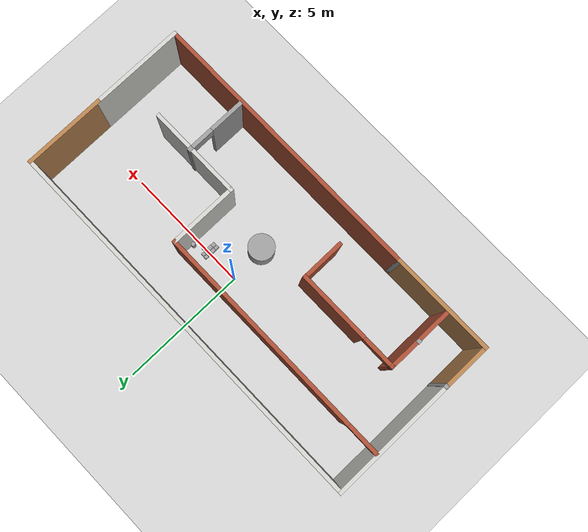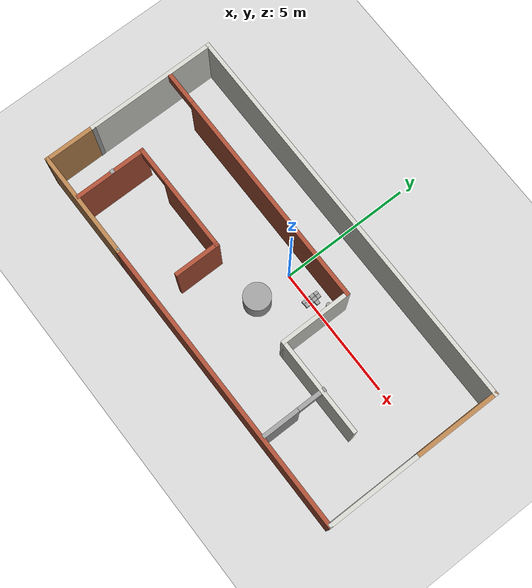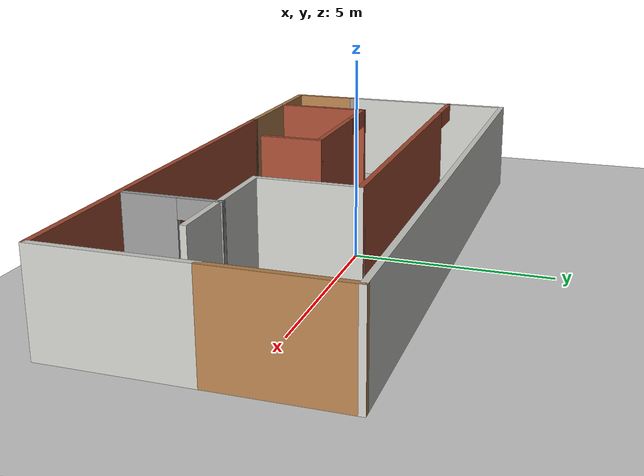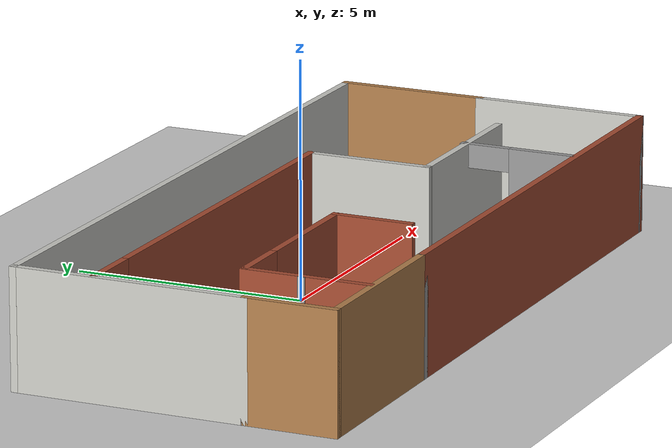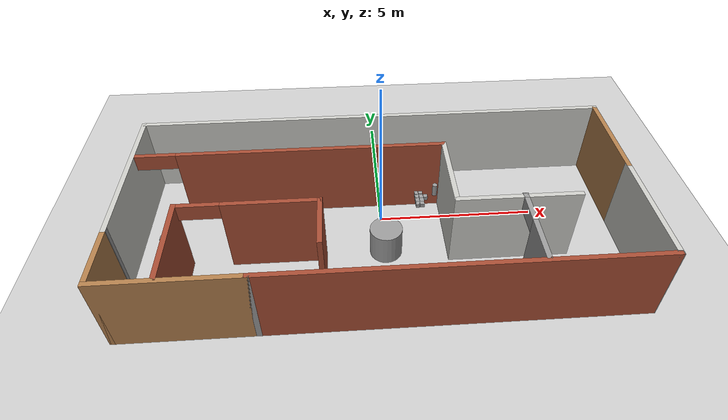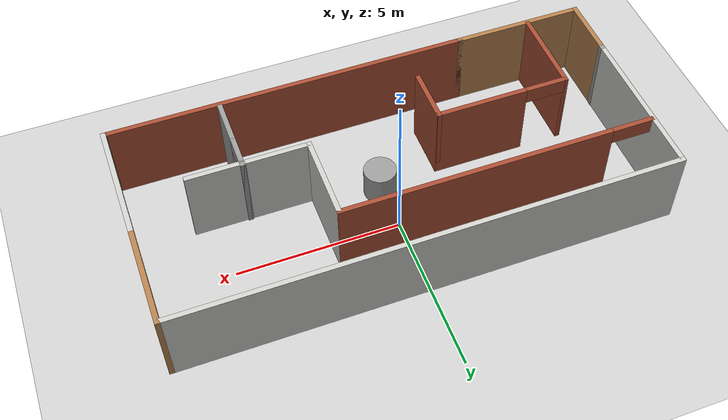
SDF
<sdf version="1.7">
 <world name="default">
  <light name="sun" type="directional">
   <pose>0 0 10 0 -0 0</pose>
   <diffuse>0.8 0.8 0.8 1</diffuse>
   <specular>0.2 0.2 0.2 1</specular>
   <attenuation>
    <range>1000</range>
    <constant>0.9</constant>
    <linear>0.01</linear>
    <quadratic>0.001</quadratic>
   </attenuation>
   <direction>-0.5 0.1 -0.9</direction>
   <spot><inner_angle>0</inner_angle><outer_angle>0</outer_angle><falloff>0</falloff></spot>
  </light>
  <model name="ground_plane">
   <static>1</static>
   <link name="link">
    <collision name="collision">
     <geometry><plane><normal>0 0 1</normal><size>100 100</size></plane></geometry>
     <surface><friction><ode><mu>100</mu><mu2>50</mu2></ode></friction></surface>
    </collision>
    <visual name="visual">
     <cast_shadows>0</cast_shadows>
     <geometry><plane><normal>0 0 1</normal><size>100 100</size></plane></geometry>
     <material>
      <script><uri>file://media/materials/scripts/gazebo.material</uri><name>Gazebo/Grey</name></script>
     </material>
    </visual>
   </link>
  </model>
  <gravity>0 0 -9.8</gravity>
  <magnetic_field>6e-06 2.3e-05 -4.2e-05</magnetic_field>
  <atmosphere type="adiabatic"/>
  <physics type="ode">
   <max_step_size>0.001</max_step_size>
   <real_time_factor>1</real_time_factor>
   <real_time_update_rate>1000</real_time_update_rate>
  </physics>
  <scene><ambient>0.4 0.4 0.4 1</ambient><background>0.7 0.7 0.7 1</background><shadows>1</shadows></scene>
  <audio><device>default</device></audio>
  <spherical_coordinates>
   <surface_model>EARTH_WGS84</surface_model>
   <latitude_deg>0</latitude_deg>
   <longitude_deg>0</longitude_deg>
   <elevation>0</elevation>
   <heading_deg>0</heading_deg>
  </spherical_coordinates>
  <model name="world1_new">
   <pose>-0.07 -0.93 0 0 -0 0</pose>
   <link name="Wall_0">
    <collision name="Wall_0_Collision">
     <geometry><box><size>0.16 0.15 2.5</size></box></geometry>
     <pose>0 0 1.25 0 -0 0</pose>
    </collision>
    <visual name="Wall_0_Visual">
     <pose>0 0 1.25 0 -0 0</pose>
     <geometry><box><size>0.16 0.15 2.5</size></box></geometry>
     <material>
      <script><uri>file://media/materials/scripts/gazebo.material</uri><name>Gazebo/Grey</name></script>
      <ambient>1 1 1 1</ambient>
     </material>
     <meta><layer>0</layer></meta>
    </visual>
    <pose>-3.575 -3.35 0 0 -0 0</pose>
   </link>
   <link name="Wall_1">
    <collision name="Wall_1_Collision">
     <geometry><box><size>11.25 0.15 2.5</size></box></geometry>
     <pose>0 0 1.25 0 -0 0</pose>
    </collision>
    <visual name="Wall_1_Visual">
     <pose>0 0 1.25 0 -0 0</pose>
     <geometry><box><size>11.25 0.15 2.5</size></box></geometry>
     <material>
      <script><uri>file://media/materials/scripts/gazebo.material</uri><name>Gazebo/Bricks</name></script>
      <ambient>1 1 1 1</ambient>
     </material>
     <meta><layer>0</layer></meta>
    </visual>
    <pose>1.98 -3.35 0 0 -0 0</pose>
   </link>
   <link name="Wall_11">
    <collision name="Wall_11_Collision">
     <geometry><box><size>2 0.15 2.5</size></box></geometry>
     <pose>0 0 1.25 0 -0 0</pose>
    </collision>
    <visual name="Wall_11_Visual">
     <pose>0 0 1.25 0 -0 0</pose>
     <geometry><box><size>2 0.15 2.5</size></box></geometry>
     <material>
      <script><uri>file://media/materials/scripts/gazebo.material</uri><name>Gazebo/Wood</name></script>
      <ambient>1 1 1 1</ambient>
     </material>
     <meta><layer>0</layer></meta>
    </visual>
    <pose>-7.55 -2.425 0 0 -0 -1.5708</pose>
   </link>
   <link name="Wall_12">
    <collision name="Wall_12_Collision">
     <geometry><box><size>4.13 0.15 2.5</size></box></geometry>
     <pose>0 0 1.25 0 -0 0</pose>
    </collision>
    <visual name="Wall_12_Visual">
     <pose>0 0 1.25 0 -0 0</pose>
     <geometry><box><size>4.13 0.15 2.5</size></box></geometry>
     <material>
      <script><uri>file://media/materials/scripts/gazebo.material</uri><name>Gazebo/Wood</name></script>
      <ambient>1 1 1 1</ambient>
     </material>
     <meta><layer>0</layer></meta>
    </visual>
    <pose>-5.56 -3.35 0 0 -0 0</pose>
   </link>
   <link name="Wall_13">
    <collision name="Wall_13_Collision">
     <geometry><box><size>0.15 0.15 2.5</size></box></geometry>
     <pose>0 0 1.25 0 -0 0</pose>
    </collision>
    <visual name="Wall_13_Visual">
     <pose>0 0 1.25 0 -0 0</pose>
     <geometry><box><size>0.15 0.15 2.5</size></box></geometry>
     <material>
      <script><uri>file://media/materials/scripts/gazebo.material</uri><name>Gazebo/Grey</name></script>
      <ambient>1 1 1 1</ambient>
     </material>
     <meta><layer>0</layer></meta>
    </visual>
    <pose>-3.57 -3.35 0 0 -0 0</pose>
   </link>
   <link name="Wall_16">
    <collision name="Wall_16_Collision">
     <geometry><box><size>0.15 0.15 2.5</size></box></geometry>
     <pose>0 0 1.25 0 -0 0</pose>
    </collision>
    <visual name="Wall_16_Visual">
     <pose>0 0 1.25 0 -0 0</pose>
     <geometry><box><size>0.15 0.15 2.5</size></box></geometry>
     <material>
      <script><uri>file://media/materials/scripts/gazebo.material</uri><name>Gazebo/Grey</name></script>
      <ambient>1 1 1 1</ambient>
     </material>
     <meta><layer>0</layer></meta>
    </visual>
    <pose>-5.89 -1.9 0 0 -0 0</pose>
   </link>
   <link name="Wall_19">
    <collision name="Wall_19_Collision">
     <geometry><box><size>2.75 0.15 2.5</size></box></geometry>
     <pose>0 0 1.25 0 -0 0</pose>
    </collision>
    <visual name="Wall_19_Visual">
     <pose>0 0 1.25 0 -0 0</pose>
     <geometry><box><size>2.75 0.15 2.5</size></box></geometry>
     <material>
      <script><uri>file://media/materials/scripts/gazebo.material</uri><name>Gazebo/Bricks</name></script>
      <ambient>1 1 1 1</ambient>
     </material>
     <meta><layer>0</layer></meta>
    </visual>
    <pose>-5.87 -1.98 0 0 -0 1.5708</pose>
   </link>
   <link name="Wall_2">
    <collision name="Wall_2_Collision">
     <geometry><box><size>0.16 0.15 2.5</size></box></geometry>
     <pose>0 0 1.25 0 -0 0</pose>
    </collision>
    <visual name="Wall_2_Visual">
     <pose>0 0 1.25 0 -0 0</pose>
     <geometry><box><size>0.16 0.15 2.5</size></box></geometry>
     <material>
      <script><uri>file://media/materials/scripts/gazebo.material</uri><name>Gazebo/Grey</name></script>
      <ambient>1 1 1 1</ambient>
     </material>
     <meta><layer>0</layer></meta>
    </visual>
    <pose>7.535 -3.35 0 0 -0 0</pose>
   </link>
   <link name="Wall_20">
    <pose>-3.82 -0.68 0 0 -0 0</pose>
    <visual name="Wall_20_Visual_0">
     <pose>-2.095 0 1.25 0 -0 0</pose>
     <geometry><box><size>0.06 0.15 2.5</size></box></geometry>
     <material>
      <script><uri>file://media/materials/scripts/gazebo.material</uri><name>Gazebo/Bricks</name></script>
      <ambient>1 1 1 1</ambient>
     </material>
     <meta><layer>0</layer></meta>
    </visual>
    <collision name="Wall_20_Collision_0">
     <geometry><box><size>0.06 0.15 2.5</size></box></geometry>
     <pose>-2.095 0 1.25 0 -0 0</pose>
    </collision>
    <visual name="Wall_20_Visual_1">
     <pose>0.68 0 1.25 0 -0 0</pose>
     <geometry><box><size>2.89 0.15 2.5</size></box></geometry>
     <material>
      <script><uri>file://media/materials/scripts/gazebo.material</uri><name>Gazebo/Bricks</name></script>
      <ambient>1 1 1 1</ambient>
     </material>
     <meta><layer>0</layer></meta>
    </visual>
    <collision name="Wall_20_Collision_1">
     <geometry><box><size>2.89 0.15 2.5</size></box></geometry>
     <pose>0.68 0 1.25 0 -0 0</pose>
    </collision>
    <visual name="Wall_20_Visual_2">
     <pose>-1.415 0 2.25 0 -0 0</pose>
     <geometry><box><size>1.3 0.15 0.5</size></box></geometry>
     <material>
      <script><uri>file://media/materials/scripts/gazebo.material</uri><name>Gazebo/Bricks</name></script>
      <ambient>1 1 1 1</ambient>
     </material>
     <meta><layer>0</layer></meta>
    </visual>
    <collision name="Wall_20_Collision_2">
     <geometry><box><size>1.3 0.15 0.5</size></box></geometry>
     <pose>-1.415 0 2.25 0 -0 0</pose>
    </collision>
   </link>
   <link name="Wall_21">
    <collision name="Wall_21_Collision">
     <geometry><box><size>1.75 0.15 2.5</size></box></geometry>
     <pose>0 0 1.25 0 -0 0</pose>
    </collision>
    <visual name="Wall_21_Visual">
     <pose>0 0 1.25 0 -0 0</pose>
     <geometry><box><size>1.75 0.15 2.5</size></box></geometry>
     <material>
      <script><uri>file://media/materials/scripts/gazebo.material</uri><name>Gazebo/Bricks</name></script>
      <ambient>1 1 1 1</ambient>
     </material>
     <meta><layer>0</layer></meta>
    </visual>
    <pose>-1.77 -1.48 0 0 -0 -1.5708</pose>
   </link>
   <link name="Wall_23">
    <pose>-2.68 1.67 0 0 -0 0</pose>
    <visual name="Wall_23_Visual_0">
     <pose>-4.84 0 1.25 0 -0 0</pose>
     <geometry><box><size>0.07 0.15 2.5</size></box></geometry>
     <material>
      <script><uri>file://media/materials/scripts/gazebo.material</uri><name>Gazebo/Bricks</name></script>
      <ambient>1 1 1 1</ambient>
     </material>
     <meta><layer>0</layer></meta>
    </visual>
    <collision name="Wall_23_Collision_0">
     <geometry><box><size>0.07 0.15 2.5</size></box></geometry>
     <pose>-4.84 0 1.25 0 -0 0</pose>
    </collision>
    <visual name="Wall_23_Visual_1">
     <pose>0.665 0 1.25 0 -0 0</pose>
     <geometry><box><size>8.42 0.15 2.5</size></box></geometry>
     <material>
      <script><uri>file://media/materials/scripts/gazebo.material</uri><name>Gazebo/Bricks</name></script>
      <ambient>1 1 1 1</ambient>
     </material>
     <meta><layer>0</layer></meta>
    </visual>
    <collision name="Wall_23_Collision_1">
     <geometry><box><size>8.42 0.15 2.5</size></box></geometry>
     <pose>0.665 0 1.25 0 -0 0</pose>
    </collision>
    <visual name="Wall_23_Visual_2">
     <pose>-4.175 0 2.25 0 -0 0</pose>
     <geometry><box><size>1.26 0.15 0.5</size></box></geometry>
     <material>
      <script><uri>file://media/materials/scripts/gazebo.material</uri><name>Gazebo/Bricks</name></script>
      <ambient>1 1 1 1</ambient>
     </material>
     <meta><layer>0</layer></meta>
    </visual>
    <collision name="Wall_23_Collision_2">
     <geometry><box><size>1.26 0.15 0.5</size></box></geometry>
     <pose>-4.175 0 2.25 0 -0 0</pose>
    </collision>
   </link>
   <link name="Wall_24">
    <collision name="Wall_24_Collision">
     <geometry><box><size>2.75 0.15 2.5</size></box></geometry>
     <pose>0 0 1.25 0 -0 0</pose>
    </collision>
    <visual name="Wall_24_Visual">
     <pose>0 0 1.25 0 -0 0</pose>
     <geometry><box><size>2.75 0.15 2.5</size></box></geometry>
     <material>
      <script><uri>file://media/materials/scripts/gazebo.material</uri><name>Gazebo/CeilingTiled</name></script>
      <ambient>1 1 1 1</ambient>
     </material>
     <meta><layer>0</layer></meta>
    </visual>
    <pose>2.12 0.37 0 0 -0 -1.5708</pose>
   </link>
   <link name="Wall_25">
    <collision name="Wall_25_Collision">
     <geometry><box><size>3.75 0.15 2.5</size></box></geometry>
     <pose>0 0 1.25 0 -0 0</pose>
    </collision>
    <visual name="Wall_25_Visual">
     <pose>0 0 1.25 0 -0 0</pose>
     <geometry><box><size>3.75 0.15 2.5</size></box></geometry>
     <material>
      <script><uri>file://media/materials/scripts/gazebo.material</uri><name>Gazebo/CeilingTiled</name></script>
      <ambient>1 1 1 1</ambient>
     </material>
     <meta><layer>0</layer></meta>
    </visual>
    <pose>3.92 -0.93 0 0 -0 0</pose>
   </link>
   <link name="Wall_27">
    <collision name="Wall_27_Collision">
     <geometry><box><size>0.16 0.15 2.5</size></box></geometry>
     <pose>0 0 1.25 0 -0 0</pose>
    </collision>
    <visual name="Wall_27_Visual">
     <pose>0 0 1.25 0 -0 0</pose>
     <geometry><box><size>0.16 0.15 2.5</size></box></geometry>
     <material>
      <script><uri>file://media/materials/scripts/gazebo.material</uri><name>Gazebo/Grey</name></script>
      <ambient>1 1 1 1</ambient>
     </material>
     <meta><layer>0</layer></meta>
    </visual>
    <pose>4.105 -0.89 0 0 -0 0</pose>
   </link>
   <link name="Wall_28">
    <pose>4.11 -2.065 0 0 -0 -1.5708</pose>
    <visual name="Wall_28_Visual_0">
     <pose>-1.1575 0 1.25 0 -0 0</pose>
     <geometry><box><size>0.185 0.15 2.5</size></box></geometry>
     <material>
      <script><uri>file://media/materials/scripts/gazebo.material</uri><name>Gazebo/Grey</name></script>
      <ambient>1 1 1 1</ambient>
     </material>
     <meta><layer>0</layer></meta>
    </visual>
    <collision name="Wall_28_Collision_0">
     <geometry><box><size>0.185 0.15 2.5</size></box></geometry>
     <pose>-1.1575 0 1.25 0 -0 0</pose>
    </collision>
    <visual name="Wall_28_Visual_1">
     <pose>0.5425 0 1.25 0 -0 0</pose>
     <geometry><box><size>1.415 0.15 2.5</size></box></geometry>
     <material>
      <script><uri>file://media/materials/scripts/gazebo.material</uri><name>Gazebo/Grey</name></script>
      <ambient>1 1 1 1</ambient>
     </material>
     <meta><layer>0</layer></meta>
    </visual>
    <collision name="Wall_28_Collision_1">
     <geometry><box><size>1.415 0.15 2.5</size></box></geometry>
     <pose>0.5425 0 1.25 0 -0 0</pose>
    </collision>
    <visual name="Wall_28_Visual_2">
     <pose>-0.615 0 2.25 0 -0 0</pose>
     <geometry><box><size>0.9 0.15 0.5</size></box></geometry>
     <material>
      <script><uri>file://media/materials/scripts/gazebo.material</uri><name>Gazebo/Grey</name></script>
      <ambient>1 1 1 1</ambient>
     </material>
     <meta><layer>0</layer></meta>
    </visual>
    <collision name="Wall_28_Collision_2">
     <geometry><box><size>0.9 0.15 0.5</size></box></geometry>
     <pose>-0.615 0 2.25 0 -0 0</pose>
    </collision>
   </link>
   <link name="Wall_3">
    <collision name="Wall_3_Collision">
     <geometry><box><size>0.16 0.15 2.5</size></box></geometry>
     <pose>0 0 1.25 0 -0 0</pose>
    </collision>
    <visual name="Wall_3_Visual">
     <pose>0 0 1.25 0 -0 0</pose>
     <geometry><box><size>0.16 0.15 2.5</size></box></geometry>
     <material>
      <script><uri>file://media/materials/scripts/gazebo.material</uri><name>Gazebo/Grey</name></script>
      <ambient>1 1 1 1</ambient>
     </material>
     <meta><layer>0</layer></meta>
    </visual>
    <pose>7.545 -3.35 0 0 -0 0</pose>
   </link>
   <link name="Wall_4">
    <collision name="Wall_4_Collision">
     <geometry><box><size>3.75 0.15 2.5</size></box></geometry>
     <pose>0 0 1.25 0 -0 0</pose>
    </collision>
    <visual name="Wall_4_Visual">
     <pose>0 0 1.25 0 -0 0</pose>
     <geometry><box><size>3.75 0.15 2.5</size></box></geometry>
     <material>
      <script><uri>file://media/materials/scripts/gazebo.material</uri><name>Gazebo/CeilingTiled</name></script>
      <ambient>1 1 1 1</ambient>
     </material>
     <meta><layer>0</layer></meta>
    </visual>
    <pose>7.55 -1.55 0 0 -0 1.5708</pose>
   </link>
   <link name="Wall_6">
    <collision name="Wall_6_Collision">
     <geometry><box><size>3.25 0.15 2.5</size></box></geometry>
     <pose>0 0 1.25 0 -0 0</pose>
    </collision>
    <visual name="Wall_6_Visual">
     <pose>0 0 1.25 0 -0 0</pose>
     <geometry><box><size>3.25 0.15 2.5</size></box></geometry>
     <material>
      <script><uri>file://media/materials/scripts/gazebo.material</uri><name>Gazebo/Wood</name></script>
      <ambient>1 1 1 1</ambient>
     </material>
     <meta><layer>0</layer></meta>
    </visual>
    <pose>7.55 1.8 0 0 -0 1.5708</pose>
   </link>
   <link name="Wall_7">
    <collision name="Wall_7_Collision">
     <geometry><box><size>15.25 0.15 2.5</size></box></geometry>
     <pose>0 0 1.25 0 -0 0</pose>
    </collision>
    <visual name="Wall_7_Visual">
     <pose>0 0 1.25 0 -0 0</pose>
     <geometry><box><size>15.25 0.15 2.5</size></box></geometry>
     <material>
      <script><uri>file://media/materials/scripts/gazebo.material</uri><name>Gazebo/CeilingTiled</name></script>
      <ambient>1 1 1 1</ambient>
     </material>
     <meta><layer>0</layer></meta>
    </visual>
    <pose>-0 3.35 0 0 -0 3.14159</pose>
   </link>
   <link name="Wall_8">
    <collision name="Wall_8_Collision">
     <geometry><box><size>5 0.15 2.5</size></box></geometry>
     <pose>0 0 1.25 0 -0 0</pose>
    </collision>
    <visual name="Wall_8_Visual">
     <pose>0 0 1.25 0 -0 0</pose>
     <geometry><box><size>5 0.15 2.5</size></box></geometry>
     <material>
      <script><uri>file://media/materials/scripts/gazebo.material</uri><name>Gazebo/CeilingTiled</name></script>
      <ambient>1 1 1 1</ambient>
     </material>
     <meta><layer>0</layer></meta>
    </visual>
    <pose>-7.55 0.925 0 0 -0 -1.5708</pose>
   </link>
   <link name="Wall_9">
    <collision name="Wall_9_Collision">
     <geometry><box><size>0.16 0.15 2.5</size></box></geometry>
     <pose>0 0 1.25 0 -0 0</pose>
    </collision>
    <visual name="Wall_9_Visual">
     <pose>0 0 1.25 0 -0 0</pose>
     <geometry><box><size>0.16 0.15 2.5</size></box></geometry>
     <material>
      <script><uri>file://media/materials/scripts/gazebo.material</uri><name>Gazebo/Grey</name></script>
      <ambient>1 1 1 1</ambient>
     </material>
     <meta><layer>0</layer></meta>
    </visual>
    <pose>-7.545 -1.5 0 0 -0 0</pose>
   </link>
   <static>1</static>
  </model>
  <model name="unit_cylinder">
   <pose>0.07081 -1.42648 0.499993 -3e-06 -2e-06 0</pose>
   <link name="link">
    <inertial>
     <mass>1</mass>
     <inertia><ixx>0.145833</ixx><ixy>0</ixy><ixz>0</ixz><iyy>0.145833</iyy><iyz>0</iyz><izz>0.125</izz></inertia>
    </inertial>
    <collision name="collision">
     <geometry><cylinder><radius>0.5</radius><length>1</length></cylinder></geometry>
    </collision>
    <visual name="visual">
     <geometry><cylinder><radius>0.5</radius><length>1</length></cylinder></geometry>
     <material>
      <script><name>Gazebo/Grey</name><uri>file://media/materials/scripts/gazebo.material</uri></script>
     </material>
    </visual>
   </link>
  </model>
  <model name="unit_box">
   <pose>1.17889 -0.263497 0.847331 1e-06 2e-06 0.000942</pose>
   <link name="link">
    <inertial>
     <mass>1</mass>
     <inertia>
      <ixx>0.166667</ixx>
      <ixy>0</ixy>
      <ixz>0</ixz>
      <iyy>0.166667</iyy>
      <iyz>0</iyz>
      <izz>0.166667</izz>
     </inertia>
    </inertial>
    <collision name="collision">
     <geometry><box><size>0.114853 0.154176 0.144662</size></box></geometry>
    </collision>
    <visual name="visual">
     <geometry><box><size>0.114853 0.154176 0.144662</size></box></geometry>
     <material>
      <script><name>Gazebo/Grey</name><uri>file://media/materials/scripts/gazebo.material</uri></script>
     </material>
    </visual>
   </link>
  </model>
  <model name="unit_box_0">
   <pose>1.17902 0.223283 0.84874 0 0 -0.004304</pose>
   <link name="link">
    <inertial>
     <mass>1</mass>
     <inertia>
      <ixx>0.166667</ixx>
      <ixy>0</ixy>
      <ixz>0</ixz>
      <iyy>0.166667</iyy>
      <iyz>0</iyz>
      <izz>0.166667</izz>
     </inertia>
    </inertial>
    <collision name="collision">
     <geometry><box><size>0.115868 0.145877 0.147481</size></box></geometry>
    </collision>
    <visual name="visual">
     <geometry><box><size>0.115868 0.145877 0.147481</size></box></geometry>
     <material>
      <script><name>Gazebo/Grey</name><uri>file://media/materials/scripts/gazebo.material</uri></script>
     </material>
    </visual>
   </link>
  </model>
  <model name="unit_box_1">
   <pose>1.18005 0.060936 0.846685 0 -0 0.000246</pose>
   <link name="link">
    <inertial>
     <mass>1</mass>
     <inertia>
      <ixx>0.166667</ixx>
      <ixy>0</ixy>
      <ixz>0</ixz>
      <iyy>0.166667</iyy>
      <iyz>0</iyz>
      <izz>0.166667</izz>
     </inertia>
    </inertial>
    <collision name="collision"><geometry><box><size>0.122663 0.157477 0.14338</size></box></geometry></collision>
    <visual name="visual">
     <geometry><box><size>0.122663 0.157477 0.14338</size></box></geometry>
     <material>
      <script><name>Gazebo/Grey</name><uri>file://media/materials/scripts/gazebo.material</uri></script>
     </material>
    </visual>
   </link>
  </model>
  <model name="unit_box_2">
   <pose>1.18027 -0.103732 0.845045 -4e-06 -1e-06 0.006338</pose>
   <link name="link">
    <inertial>
     <mass>1</mass>
     <inertia>
      <ixx>0.166667</ixx>
      <ixy>0</ixy>
      <ixz>0</ixz>
      <iyy>0.166667</iyy>
      <iyz>0</iyz>
      <izz>0.166667</izz>
     </inertia>
    </inertial>
    <collision name="collision">
     <geometry><box><size>0.129227 0.157535 0.140099</size></box></geometry>
    </collision>
    <visual name="visual">
     <geometry><box><size>0.129227 0.157535 0.140099</size></box></geometry>
     <material>
      <script><name>Gazebo/Grey</name><uri>file://media/materials/scripts/gazebo.material</uri></script>
     </material>
    </visual>
   </link>
  </model>
  <model name="unit_box_3">
   <pose>1.31723 -0.258331 0.84561 -1.5708 -4e-06 -1.56973</pose>
   <link name="link">
    <inertial>
     <mass>1</mass>
     <inertia>
      <ixx>0.166667</ixx>
      <ixy>0</ixy>
      <ixz>0</ixz>
      <iyy>0.166667</iyy>
      <iyz>0</iyz>
      <izz>0.166667</izz>
     </inertia>
    </inertial>
    <collision name="collision"><geometry><box><size>0.14131 0.14122 0.145423</size></box></geometry></collision>
    <visual name="visual">
     <geometry><box><size>0.14131 0.14122 0.145423</size></box></geometry>
     <material>
      <script><name>Gazebo/Grey</name><uri>file://media/materials/scripts/gazebo.material</uri></script>
     </material>
    </visual>
   </link>
  </model>
  <model name="unit_box_4">
   <pose>1.45872 0.064666 0.84768 -2.36666 1.57079 -2.3671</pose>
   <link name="link">
    <inertial>
     <mass>1</mass>
     <inertia>
      <ixx>0.166667</ixx>
      <ixy>0</ixy>
      <ixz>0</ixz>
      <iyy>0.166667</iyy>
      <iyz>0</iyz>
      <izz>0.166667</izz>
     </inertia>
    </inertial>
    <collision name="collision">
     <geometry><box><size>0.145373 0.137783 0.131889</size></box></geometry>
    </collision>
    <visual name="visual">
     <geometry><box><size>0.145373 0.137783 0.131889</size></box></geometry>
     <material>
      <script><name>Gazebo/Grey</name><uri>file://media/materials/scripts/gazebo.material</uri></script>
     </material>
    </visual>
   </link>
  </model>
  <model name="unit_box_5">
   <pose>1.31303 0.221305 0.850425 -0.190022 1.57078 1.38366</pose>
   <link name="link">
    <inertial>
     <mass>1</mass>
     <inertia>
      <ixx>0.166667</ixx>
      <ixy>0</ixy>
      <ixz>0</ixz>
      <iyy>0.166667</iyy>
      <iyz>0</iyz>
      <izz>0.166667</izz>
     </inertia>
    </inertial>
    <collision name="collision"><geometry><box><size>0.150847 0.12739 0.136039</size></box></geometry></collision>
    <visual name="visual">
     <geometry><box><size>0.150847 0.12739 0.136039</size></box></geometry>
     <material>
      <script><name>Gazebo/Grey</name><uri>file://media/materials/scripts/gazebo.material</uri></script>
     </material>
    </visual>
   </link>
  </model>
  <model name="unit_box_6">
   <pose>1.32486 -0.103261 0.841943 -2e-06 -2e-06 0.039363</pose>
   <link name="link">
    <inertial>
     <mass>1</mass>
     <inertia>
      <ixx>0.166667</ixx>
      <ixy>0</ixy>
      <ixz>0</ixz>
      <iyy>0.166667</iyy>
      <iyz>0</iyz>
      <izz>0.166667</izz>
     </inertia>
    </inertial>
    <collision name="collision">
     <geometry><box><size>0.137445 0.158066 0.133886</size></box></geometry>
    </collision>
    <visual name="visual">
     <geometry><box><size>0.137445 0.158066 0.133886</size></box></geometry>
     <material>
      <script><name>Gazebo/Grey</name><uri>file://media/materials/scripts/gazebo.material</uri></script>
     </material>
    </visual>
   </link>
  </model>
  <model name="unit_box_7">
   <pose>1.31791 0.063224 0.846371 -1.57079 1e-06 0.000833</pose>
   <link name="link">
    <inertial>
     <mass>1</mass>
     <inertia>
      <ixx>0.166667</ixx>
      <ixy>0</ixy>
      <ixz>0</ixz>
      <iyy>0.166667</iyy>
      <iyz>0</iyz>
      <izz>0.166667</izz>
     </inertia>
    </inertial>
    <collision name="collision">
     <geometry><box><size>0.129984 0.142743 0.165701</size></box></geometry>
    </collision>
    <visual name="visual">
     <geometry><box><size>0.129984 0.142743 0.165701</size></box></geometry>
     <material>
      <script><name>Gazebo/Grey</name><uri>file://media/materials/scripts/gazebo.material</uri></script>
     </material>
    </visual>
   </link>
  </model>
  <model name="unit_cylinder_0">
   <pose>1.78892 0.263107 0.98193 9e-06 -8.9e-05 0.000244</pose>
   <link name="link">
    <inertial>
     <mass>1</mass>
     <inertia><ixx>0.145833</ixx><ixy>0</ixy><ixz>0</ixz><iyy>0.145833</iyy><iyz>0</iyz><izz>0.125</izz></inertia>
    </inertial>
    <collision name="collision">
     <geometry><cylinder><radius>0.0784837</radius><length>0.413847</length></cylinder></geometry>
    </collision>
    <visual name="visual">
     <geometry><cylinder><radius>0.0784837</radius><length>0.413847</length></cylinder></geometry>
     <material>
      <script><name>Gazebo/Grey</name><uri>file://media/materials/scripts/gazebo.material</uri></script>
     </material>
    </visual>
   </link>
  </model>
 </world>
</sdf>
